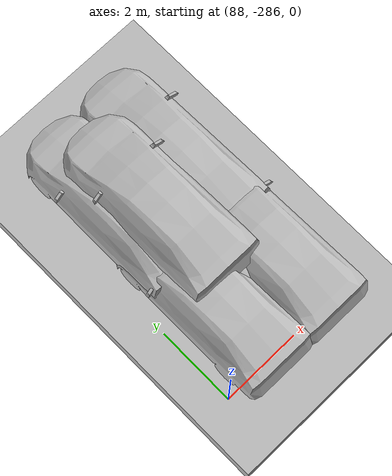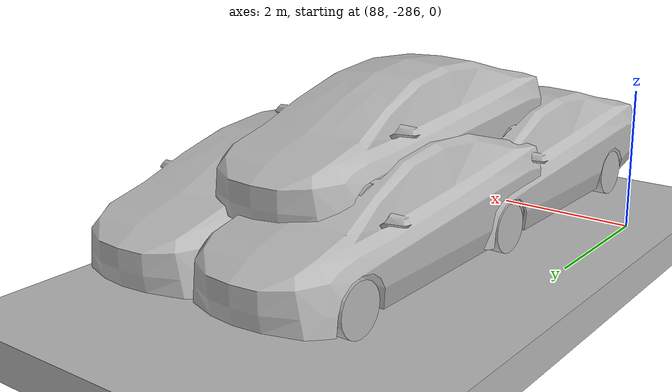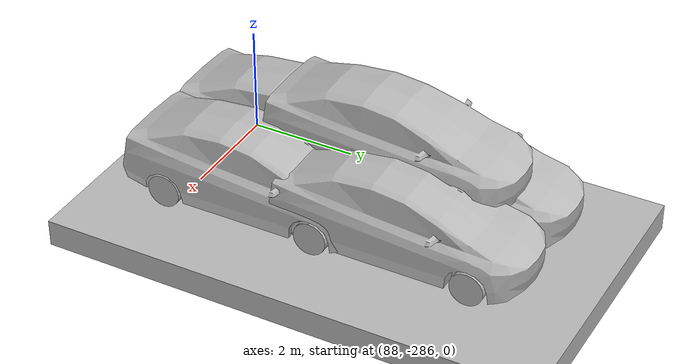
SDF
<?xml version="1.0" ?>
<sdf version="1.6">
  <world name="default">

    <gui fullscreen='0'>
      <plugin name='keyboard' filename='libKeyboardGUIPlugin.so'/>
      <camera name="user_camera">
        <pose>89.90 -309.03 10.39 0 0.24 1.63</pose>
      </camera>

    </gui>

    <!-- A global light source -->
    <include>
      <uri>model://sun</uri>
    </include>
    <!-- A ground plane -->
    <include>
      <uri>model://ground_plane</uri>
    </include>

    <include>
      <uri>model://sonoma_raceway_box</uri>
    </include>

    <model name="prius_hybrid">
      <pose>89.90 -282.78 0.24 0 0 3.14</pose>
      <include>
        <uri>model://prius_hybrid</uri>
      </include>

      <link name="camera_link">
        <pose>0.30 -0.18 1.3 0 0 -1.5707</pose>
        <visual name="visual">
          <geometry>
            <box>
              <size>0.01 0.01 0.01</size>
            </box>
          </geometry>
        </visual>
        <sensor name="camera" type="wideanglecamera">
          <camera>
            <horizontal_fov>2.09</horizontal_fov>
            <image>
              <width>1280</width>
              <height>960</height>
            </image>
            <clip>
              <near>0.01</near>
              <far>100</far>
            </clip>
            <lens>
              <type>stereographic</type>
              <scale_to_hfov>true</scale_to_hfov>
              <cutoff_angle>2.09</cutoff_angle>
              <env_texture_size>1024</env_texture_size>
            </lens>
          </camera>
          <always_on>1</always_on>
          <update_rate>30</update_rate>
          <visualize>false</visualize>
        </sensor>
      </link>
      <joint name="camera_joint" type="fixed">
        <parent>prius_hybrid::chassis</parent>
        <child>camera_link</child>
      </joint>
    </model>

  </world>
</sdf>

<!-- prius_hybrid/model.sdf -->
<sdf version="1.6">
  <model name="prius_hybrid">
    <plugin name='priusHybrid' filename='libPriusHybridPlugin.so'>
      <chassis>chassis</chassis>
      <front_left_wheel>prius_hybrid::front_left_combined_joint</front_left_wheel>
      <front_right_wheel>prius_hybrid::front_right_combined_joint</front_right_wheel>
      <front_left_wheel_steering>prius_hybrid::front_left_combined_joint</front_left_wheel_steering>
      <front_right_wheel_steering>prius_hybrid::front_right_combined_joint</front_right_wheel_steering>
      <back_left_wheel>prius_hybrid::rear_left_wheel_joint</back_left_wheel>
      <back_right_wheel>prius_hybrid::rear_right_wheel_joint</back_right_wheel>
      <steering_wheel>prius_hybrid::steering_joint</steering_wheel>
      <chassis_aero_force_gain>0.63045</chassis_aero_force_gain>
      <front_torque>859.4004393000001</front_torque>
      <back_torque>0</back_torque>
      <front_brake_torque>1031.28052716</front_brake_torque>
      <back_brake_torque>687.5203514400001</back_brake_torque>
      <max_speed>37.998337013956565</max_speed>
      <min_gas_flow>8.981854013171626e-05</min_gas_flow>
      <gas_efficiency>0.371</gas_efficiency>
      <battery_charge_watt_hours>291</battery_charge_watt_hours>
      <battery_discharge_watt_hours>214</battery_discharge_watt_hours>
      <!-- 37 deg ~= 0.6458 rad -->
      <max_steer>0.6458</max_steer>
      <flwheel_steering_p_gain>1e4</flwheel_steering_p_gain>
      <frwheel_steering_p_gain>1e4</frwheel_steering_p_gain>
      <flwheel_steering_i_gain>0</flwheel_steering_i_gain>
      <frwheel_steering_i_gain>0</frwheel_steering_i_gain>
      <flwheel_steering_d_gain>3e2</flwheel_steering_d_gain>
      <frwheel_steering_d_gain>3e2</frwheel_steering_d_gain>
    </plugin>

    <pose>0 0 0.03 0 0 0</pose>
    <link name="chassis">
      <inertial>
        <mass>1326.0</mass>
        <pose>0 -0.266 0.48 0 0 0</pose>
        <inertia>
          <ixx>2581.13354740</ixx>
          <ixy>0.0</ixy>
          <iyy>591.30846112</iyy>
          <ixz>0.0</ixz>
          <iyz>0.0</iyz>
          <izz>2681.95008628</izz>
        </inertia>
      </inertial>

      <visual name="chassis_visual">
        <geometry>
          <mesh>
            <uri>model://prius_hybrid/meshes/Hybrid.obj</uri>
            <scale>0.01 0.01 0.01</scale>
            <submesh>
              <name>Hybrid</name>
              <center>false</center>
            </submesh>
          </mesh>
        </geometry>
      </visual>

      <visual name="interior_visual">
        <geometry>
          <mesh>
            <uri>model://prius_hybrid/meshes/Hybrid.obj</uri>
            <scale>0.01 0.01 0.01</scale>
            <submesh>
              <name>Hybrid_Interior</name>
              <center>false</center>
            </submesh>
          </mesh>
        </geometry>
      </visual>

      <visual name="windows_visual">
        <geometry>
          <mesh>
            <uri>model://prius_hybrid/meshes/Hybrid.obj</uri>
            <scale>0.01 0.01 0.01</scale>
            <submesh>
              <name>Hybrid_Windows</name>
              <center>false</center>
            </submesh>
          </mesh>
        </geometry>
      </visual>

      <collision name="chassis">
        <pose>0.0 0.05 0.625 0 0 0</pose>
        <geometry>
          <box>
            <size>1.7526 2.1 0.95</size>
          </box>
        </geometry>
      </collision>

      <collision name="front_bumper">
        <pose>0.0 -2.0 0.458488 0.0 0 0</pose>
        <geometry>
          <box>
            <size>1.337282 0.48 0.566691</size>
          </box>
        </geometry>
      </collision>

      <collision name="hood">
        <pose>0.0 -1.900842 0.676305 0.341247 0 0</pose>
        <geometry>
          <box>
            <size>1.597968 0.493107 0.265468</size>
          </box>
        </geometry>
      </collision>

      <collision name="windshield">
        <pose>0.0 -0.875105 1.032268 0.335476 0 0</pose>
        <geometry>
          <box>
            <size>1.168381 1.654253 0.272347</size>
          </box>
        </geometry>
      </collision>

      <collision name="top_front">
        <pose>0.0 0.161236 1.386042 0.135030 0 0</pose>
        <geometry>
          <box>
            <size>1.279154 0.625988 0.171868</size>
          </box>
        </geometry>
      </collision>

      <collision name="top_rear">
        <pose>0.0 0.817696 1.360069 -0.068997 0 0</pose>
        <geometry>
          <box>
            <size>1.285130 0.771189 0.226557</size>
          </box>
        </geometry>
      </collision>

      <collision name="rear_window">
        <pose>0.0 1.640531 1.175126 -0.262017 0 0</pose>
        <geometry>
          <box>
            <size>1.267845 1.116344 0.244286</size>
          </box>
        </geometry>
      </collision>

      <collision name="trunk">
        <pose>0.0 1.637059 0.888180 0.0 0 0</pose>
        <geometry>
          <box>
            <size>1.788064 1.138988 0.482746</size>
          </box>
        </geometry>
      </collision>

      <collision name="back_bumper">
        <pose>0.0 2.054454 0.577870 0.0 0 0</pose>
        <geometry>
          <box>
            <size>1.781650 0.512093 0.581427</size>
          </box>
        </geometry>
      </collision>
    </link>

    <link name="steering_wheel">
      <pose>0.357734 -0.627868 0.988243 -1.302101 0 0</pose>
      <inertial>
        <mass>1.0</mass>
        <inertia>
          <ixx>0.14583300</ixx>
          <ixy>0</ixy>
          <ixz>0</ixz>
          <iyy>0.14583300</iyy>
          <iyz>0</iyz>
          <izz>0.12500000</izz>
        </inertia>
      </inertial>
      <collision name="collision">
        <geometry>
          <cylinder>
            <radius>0.178172</radius>
            <length>0.041845</length>
          </cylinder>
        </geometry>
        <surface>
          <contact>
            <ode>
              <min_depth>0.003</min_depth>
            </ode>
          </contact>
        </surface>
      </collision>
      <visual name="visual">
        <pose>0 0 0 1.302101 0 0</pose>
        <geometry>
          <mesh>
            <uri>model://prius_hybrid/meshes/Hybrid.obj</uri>
            <scale>0.01 0.01 0.01</scale>
            <submesh>
              <name>Steering_Wheel</name>
              <center>true</center>
            </submesh>
          </mesh>
        </geometry>
      </visual>
    </link>

    <link name="front_left_wheel">
      <pose>0.76 -1.41 0.3 0 0 0</pose>
      <inertial>
        <mass>11</mass>
        <inertia>
          <ixx>0.58631238</ixx>
          <ixy>0.0</ixy>
          <iyy>0.33552910</iyy>
          <ixz>0.0</ixz>
          <iyz>0.0</iyz>
          <izz>0.33552910</izz>
        </inertia>
      </inertial>

      <visual name="visual">
        <pose>0.04 0.0 0.0 0 0 0</pose>
        <geometry>
          <mesh>
            <uri>model://prius_hybrid/meshes/Hybrid.obj</uri>
            <scale>0.01 0.01 0.01</scale>
            <submesh>
              <name>Wheel_Front_Left_</name>
              <center>true</center>
            </submesh>
          </mesh>
        </geometry>
      </visual>

      <collision name="collision">
        <pose>0.0 0.0 0.0 0 1.5707963267948966 0</pose>
        <geometry>
          <sphere>
            <radius>0.31265</radius>
          </sphere>
        </geometry>
        <surface>
          <friction>
            <ode>
              <mu>0.9</mu>
              <mu2>0.9</mu2>
              <slip1>0.0</slip1>
              <slip2>0.0</slip2>
            </ode>
          </friction>
          <contact>
            <ode>
              <min_depth>0.001</min_depth>
              <kp>1e9</kp>
            </ode>
          </contact>
        </surface>

      </collision>
    </link>

    <link name="front_right_wheel">
      <pose>-0.76 -1.41 0.3 0 0 0</pose>
      <inertial>
        <mass>11</mass>
        <inertia>
          <ixx>0.58631238</ixx>
          <ixy>0.0</ixy>
          <iyy>0.33552910</iyy>
          <ixz>0.0</ixz>
          <iyz>0.0</iyz>
          <izz>0.33552910</izz>
        </inertia>
      </inertial>
      <visual name="visual">
        <pose>-0.04 0.0 0.0 0 0 0</pose>
        <pose>0 0 0.0 0 0 0</pose>
        <geometry>
          <mesh>
            <uri>model://prius_hybrid/meshes/Hybrid.obj</uri>
            <scale>0.01 0.01 0.01</scale>
            <submesh>
              <name>Wheel_Front_Right</name>
              <center>true</center>
            </submesh>
          </mesh>
        </geometry>
      </visual>

      <collision name="collision">
        <pose>0.0 0.0 0.0 0 1.5707963267948966 0</pose>
        <geometry>
          <sphere>
            <radius>0.31265</radius>
          </sphere>
        </geometry>
        <surface>
          <friction>
            <ode>
              <mu>0.9</mu>
              <mu2>0.9</mu2>
              <slip1>0.0</slip1>
              <slip2>0.0</slip2>
            </ode>
          </friction>
          <contact>
            <ode>
              <min_depth>0.001</min_depth>
              <kp>1e9</kp>
            </ode>
          </contact>
        </surface>

      </collision>
    </link>

    <link name="rear_left_wheel">
      <pose>0.786 1.45 0.3 0 0 0</pose>
      <inertial>
        <mass>11</mass>
        <inertia>
          <ixx>0.58631238</ixx>
          <ixy>0.0</ixy>
          <iyy>0.33552910</iyy>
          <ixz>0.0</ixz>
          <iyz>0.0</iyz>
          <izz>0.33552910</izz>
        </inertia>
      </inertial>

      <visual name="visual">
        <pose>0.04 0.0 0.0 0 0 0</pose>
        <geometry>
          <mesh>
            <uri>model://prius_hybrid/meshes/Hybrid.obj</uri>
            <scale>0.01 0.01 0.01</scale>
            <submesh>
              <name>Wheel_Front_Left_</name>
              <center>true</center>
            </submesh>
          </mesh>
        </geometry>
      </visual>

      <collision name="collision">
        <pose>0.0 0.0 0.0 0 1.5707963267948966 0</pose>
        <geometry>
          <sphere>
            <radius>0.31265</radius>
          </sphere>
        </geometry>
        <surface>
          <friction>
            <ode>
              <mu>1.1</mu>
              <mu2>1.1</mu2>
              <slip1>0.0</slip1>
              <slip2>0.0</slip2>
            </ode>
          </friction>
          <contact>
            <ode>
              <min_depth>0.001</min_depth>
              <kp>1e9</kp>
            </ode>
          </contact>
        </surface>

      </collision>
    </link>

    <link name="rear_right_wheel">
      <pose>-0.786 1.45 0.3 0 0 0</pose>
      <inertial>
        <mass>11</mass>
        <inertia>
          <ixx>0.58631238</ixx>
          <ixy>0.0</ixy>
          <iyy>0.33552910</iyy>
          <ixz>0.0</ixz>
          <iyz>0.0</iyz>
          <izz>0.33552910</izz>
        </inertia>
      </inertial>
      <visual name="visual">
        <pose>-0.04 0.0 0.0 0 0 0</pose>
        <geometry>
          <mesh>
            <uri>model://prius_hybrid/meshes/Hybrid.obj</uri>
            <scale>0.01 0.01 0.01</scale>
            <submesh>
              <name>Wheel_Front_Right</name>
              <center>true</center>
            </submesh>
          </mesh>
        </geometry>
      </visual>

      <collision name="collision">
        <pose>0.0 0.0 0.0 0 1.5707963267948966 0</pose>
        <geometry>
          <sphere>
            <radius>0.31265</radius>
          </sphere>
        </geometry>
        <surface>
          <friction>
            <ode>
              <mu>1.1</mu>
              <mu2>1.1</mu2>
              <slip1>0.0</slip1>
              <slip2>0.0</slip2>
            </ode>
          </friction>
          <contact>
            <ode>
              <min_depth>0.001</min_depth>
              <kp>1e9</kp>
            </ode>
          </contact>
        </surface>
      </collision>
    </link>

    <joint type="universal" name="front_left_combined_joint">
      <pose>0 0 0 -0.08726646259971647 0 0</pose>
      <child>front_left_wheel</child>
      <parent>chassis</parent>
      <axis>
        <xyz>0 0 1</xyz>
        <limit>
          <!-- +- 50 degrees -->
          <lower>-0.8727</lower>
          <upper>0.8727</upper>
        </limit>
      </axis>
      <axis2>
        <xyz>1 0 0</xyz>
        <dynamics>
          <friction>18.0474092253</friction>
        </dynamics>
      </axis2>
    </joint>

    <joint type="universal" name="front_right_combined_joint">
      <pose>0 0 0 -0.08726646259971647 0 0</pose>
      <child>front_right_wheel</child>
      <parent>chassis</parent>
      <axis>
        <xyz>0 0 1</xyz>
        <limit>
          <!-- +- 50 degrees -->
          <lower>-0.8727</lower>
          <upper>0.8727</upper>
        </limit>
      </axis>
      <axis2>
        <xyz>1 0 0</xyz>
        <dynamics>
          <friction>18.0474092253</friction>
        </dynamics>
      </axis2>
    </joint>

    <link name="rear_axle">
      <pose>0 1.45 0.3 0 0 0</pose>
      <inertial>
        <mass>30.0</mass>
        <inertia>
          <ixx>0.08437499999999999</ixx>
          <ixy>0.0</ixy>
          <iyy>4.64581</iyy>
          <ixz>0.0</ixz>
          <iyz>0.0</iyz>
          <izz>4.64581</izz>
        </inertia>
      </inertial>
      <visual name="visual">
        <pose>0.0 0.0 0.0 0 1.5707963267948966 0</pose>
        <geometry>
          <cylinder>
            <length>1.357</length>
            <radius>0.075</radius>
          </cylinder>
        </geometry>
        <material>
          <script>
            <name>Gazebo/Grey</name>
            <uri>file://media/materials/scripts/gazebo.material</uri>
          </script>
        </material>
      </visual>
    </link>

    <joint type="revolute" name="rear_axle_joint">
      <child>rear_axle</child>
      <parent>chassis</parent>
      <axis>
        <xyz>0 1 0</xyz>
        <limit>
          <lower>-0.05089058524173028</lower>
          <upper>0.05089058524173028</upper>
        </limit>
        <dynamics>
          <spring_stiffness>20000.0</spring_stiffness>
          <damping>2000.0</damping>
        </dynamics>
      </axis>
    </joint>
    <joint type="revolute" name="rear_left_wheel_joint">
      <child>rear_left_wheel</child>
      <parent>rear_axle</parent>
      <axis>
        <xyz>1 0 0</xyz>
        <dynamics>
          <friction>12.031606150200002</friction>
        </dynamics>
      </axis>
    </joint>
    <joint type="revolute" name="rear_right_wheel_joint">
      <child>rear_right_wheel</child>
      <parent>rear_axle</parent>
      <axis>
        <xyz>1 0 0</xyz>
        <dynamics>
          <friction>12.031606150200002</friction>
        </dynamics>
      </axis>
    </joint>

    <joint name="steering_joint" type="revolute">
      <pose>-0.002 0 0 0 0 0</pose>
      <parent>chassis</parent>
      <child>steering_wheel</child>
      <axis>
        <xyz>0 0.964095 0.265556</xyz>
        <limit>
          <lower>-7.85</lower>
          <upper>7.85</upper>
        </limit>
        <dynamics>
          <damping>1.0</damping>
        </dynamics>
        <use_parent_model_frame>true</use_parent_model_frame>
      </axis>
      <physics>
        <ode>
          <cfm_damping>1</cfm_damping>
        </ode>
      </physics>
    </joint>

  </model>

</sdf>

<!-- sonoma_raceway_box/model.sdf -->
<sdf version="1.6">
  <model name="sonoma_raceway_box">
    <static>true</static>
    <link name="link">
      <collision name="collision">
        <geometry>
          <box>
            <size>450 1300 0.5</size>
          </box>
        </geometry>
      </collision>
      <visual name="visual">
        <geometry>
          <box>
            <size>450 1300 0.5</size>
          </box>
        </geometry>
        <material>
          <script>
            <uri>model://sonoma_raceway_box/materials/scripts</uri>
            <uri>model://sonoma_raceway_box/materials/textures</uri>
            <name>SonomaRaceway</name>
          </script>
        </material>
      </visual>

    </link>
  </model>
</sdf>
